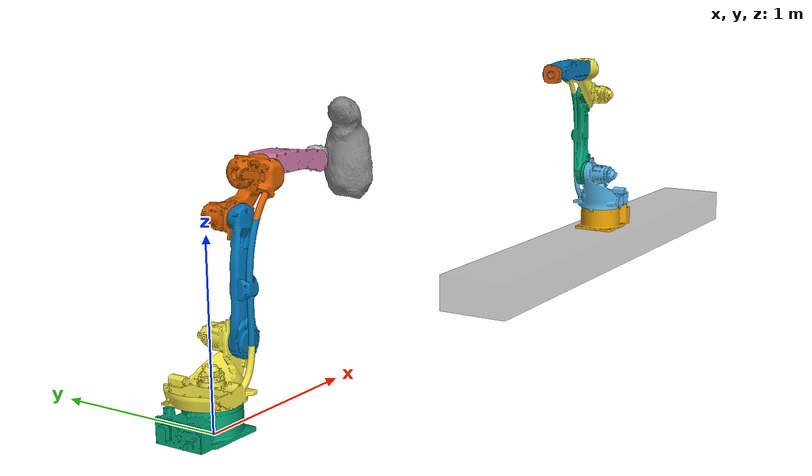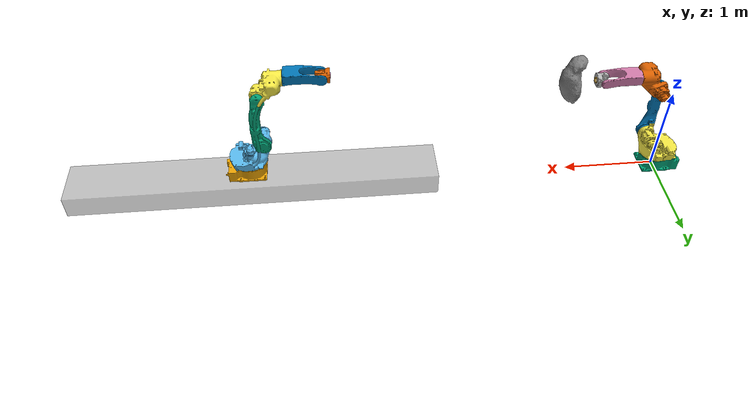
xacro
<?xml version="1.0" ?>
<robot name="dual_gp12_rail" xmlns:xacro="http://ros.org/wiki/xacro">
  <xacro:include filename="$(find motoman_gp12_support)/urdf/gp12_macro.xacro" />

  <!-- Instantiate both robots -->
  <xacro:motoman_gp12 prefix="group_1/"/>
  <xacro:motoman_gp12 prefix="group_2/"/>

  <!-- World frame -->
  <link name="world"/>

  <!-- Rail size and robot 1 position variables -->
  <xacro:property name="rail_length" value="4.0"/>
  <xacro:property name="rail_width" value="0.5"/>
  <xacro:property name="rail_height" value="0.25"/>
  <xacro:property name="world_to_rail_offset" value="${rail_length+0.5}"/>
  <xacro:property name="target_model_scale" value="1.0"/>

  <!-- Rail for Robot 1 -->
  <link name="rail">
    <visual>
      <geometry>
        <box size="${rail_length} ${rail_width} ${rail_height}"/>
      </geometry>
      <origin xyz="0.0 0.0 ${rail_height/2}" rpy="0 0 0"/>
      <material name="rail_grey">
        <color rgba="0.5 0.5 0.5 0.5"/>
      </material>
    </visual>
    <collision>
      <geometry>
        <box size="${rail_length} ${rail_width} ${rail_height}"/>
      </geometry>
      <origin xyz="0.0 0.0 ${rail_height/2}" rpy="0 0 0"/>
    </collision>
  </link>

  <joint name="world_to_rail" type="fixed">
    <parent link="world"/>
    <child link="rail"/>
    <origin xyz="${world_to_rail_offset} 0 0" rpy="0 0 3.14159"/>
  </joint>

  <joint name="rail_joint" type="prismatic">
    <parent link="rail"/>
    <child link="group_1/base_link"/>
    <origin xyz="0 0 ${rail_height}" rpy="0 0 0"/>
    <axis xyz="1 0 0"/>
    <limit lower="${-rail_length/2}" upper="${rail_length/2}" effort="1000.0" velocity="1.0"/>
  </joint>

  <!-- Robot 2 at world origin -->
  <joint name="world_to_robot2" type="fixed">
    <parent link="world"/>
    <child link="group_2/base_link"/>
    <origin xyz="0 0 0" rpy="0 0 0"/>
  </joint>

  <!-- Target mounted on Robot 2. NOTE TODO: can be moved to external reusable xacro-->
  <link name="group_2/target">
    <visual>
      <geometry>
        <mesh filename="package://cosmica_resources/meshes/Itokawa_Hayabusa_200k_poly.stl" scale="${target_model_scale} ${target_model_scale} ${target_model_scale}"/>
      </geometry>
      <material name="target_grey">
        <color rgba="0.5 0.5 0.5 1.0"/>
      </material>
      <origin xyz="0.0 0.0 0.25" rpy="0 0 0"/>
    </visual>
    <collision>
      <geometry>
        <mesh filename="package://cosmica_resources/meshes/Itokawa_Hayabusa_200k_poly.stl" scale="${target_model_scale} ${target_model_scale} ${target_model_scale}"/>
      </geometry>
      <origin xyz="0.0 0.0 0.0" rpy="0 0 0"/>
    </collision>
  </link>

<!-- Define joint from tool0 to link target-->
  <joint name="group_2/tool0_to_target" type="fixed">
    <parent link="group_2/tool0"/>
    <child link="group_2/target"/>
    <origin xyz="0.0 0.0 0.0" rpy="0 0 0"/>  <!-- offset from tool0 -->
  </joint>

</robot>

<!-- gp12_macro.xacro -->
<robot xmlns:xacro="http://ros.org/wiki/xacro">
<xacro:macro name="motoman_gp12" params="prefix">
    <xacro:include filename="$(find motoman_resources)/urdf/common_materials.xacro"/>

    <!-- link list -->
    <link name="${prefix}base_link">
        <visual>
            <geometry>
                <mesh filename="package://motoman_gp12_support/meshes/visual/gp12_base_link.stl"/>
            </geometry>
            <xacro:material_yaskawa_blue/>
        </visual>
        <collision>
            <geometry>
                <mesh filename="package://motoman_gp12_support/meshes/collision/gp12_base_link.stl"/>
            </geometry>
        </collision>
    </link>
    <link name="${prefix}link_1">
        <visual>
            <geometry>
                <mesh filename="package://motoman_gp12_support/meshes/visual/gp12_link_1_s.stl"/>
            </geometry>
            <xacro:material_yaskawa_blue/>
        </visual>
        <collision>
            <geometry>
                <mesh filename="package://motoman_gp12_support/meshes/collision/gp12_link_1_s.stl"/>
            </geometry>
        </collision>
    </link>
    <link name="${prefix}link_2">
        <visual>
            <geometry>
                <mesh filename="package://motoman_gp12_support/meshes/visual/gp12_link_2_l.stl"/>
            </geometry>
            <xacro:material_yaskawa_blue/>
        </visual>
        <collision>
            <geometry>
                <mesh filename="package://motoman_gp12_support/meshes/collision/gp12_link_2_l.stl"/>
            </geometry>
        </collision>
    </link>
    <link name="${prefix}link_3">
        <visual>
            <geometry>
                <mesh filename="package://motoman_gp12_support/meshes/visual/gp12_link_3_u.stl"/>
            </geometry>
            <xacro:material_yaskawa_blue/>
        </visual>
        <collision>
            <geometry>
                <mesh filename="package://motoman_gp12_support/meshes/collision/gp12_link_3_u.stl"/>
            </geometry>
        </collision>
    </link>
    <link name="${prefix}link_4">
        <visual>
            <geometry>
                <mesh filename="package://motoman_gp12_support/meshes/visual/gp12_link_4_r.stl"/>
            </geometry>
            <xacro:material_yaskawa_blue/>
        </visual>
        <collision>
            <geometry>
                <mesh filename="package://motoman_gp12_support/meshes/collision/gp12_link_4_r.stl"/>
            </geometry>
        </collision>
    </link>
    <link name="${prefix}link_5">
        <visual>
            <geometry>
                <mesh filename="package://motoman_gp12_support/meshes/visual/gp12_link_5_b.stl"/>
            </geometry>
            <xacro:material_yaskawa_blue/>
        </visual>
        <collision>
            <geometry>
                <mesh filename="package://motoman_gp12_support/meshes/collision/gp12_link_5_b.stl"/>
            </geometry>
        </collision>
    </link>
    <link name="${prefix}link_6">
        <visual>
            <geometry>
                <mesh filename="package://motoman_gp12_support/meshes/visual/gp12_link_6_t.stl"/>
            </geometry>
            <xacro:material_yaskawa_blue/>
        </visual>
        <collision>
            <geometry>
                <mesh filename="package://motoman_gp12_support/meshes/collision/gp12_link_6_t.stl"/>
            </geometry>
        </collision>
    </link>
    <link name="${prefix}flange"/>
    <link name="${prefix}tool0"/>
    <!-- end of link list -->

    <!-- joint list -->
    <joint name="${prefix}joint_1" type="revolute">
        <parent link="${prefix}base_link"/>
        <child link="${prefix}link_1"/>
        <origin xyz="0 0 0.450" rpy="0 0 0" />
        <axis xyz="0 0 1" />
        <limit lower="-2.9670" upper="2.9670" effort="926.10" velocity="4.5355"/>
    </joint>
    <joint name="${prefix}joint_2" type="revolute">
        <parent link="${prefix}link_1"/>
        <child link="${prefix}link_2"/>
        <origin xyz="0.155 0 0" rpy="0 0 0" />
        <axis xyz="0 1 0" />
        <limit lower="-1.5708" upper="2.7052" effort="1029.00" velocity="4.0132"/>
    </joint>
    <joint name="${prefix}joint_3" type="revolute">
        <parent link="${prefix}link_2"/>
        <child link="${prefix}link_3"/>
        <origin xyz="0 0 0.614" rpy="0 0 0" />
        <axis xyz="0 -1 0" />
        <limit lower="-1.4835" upper="2.6179" effort="551.25" velocity="4.5375"/>
    </joint>
    <joint name="${prefix}joint_4" type="revolute">
        <parent link="${prefix}link_3"/>
        <child link="${prefix}link_4"/>
        <origin xyz="0.640 0 0.200" rpy="0 0 0" />
        <axis xyz="-1 0 0" />
        <limit lower="-3.4906" upper="3.4906" effort="89.96" velocity="8.2007"/>
    </joint>
    <joint name="${prefix}joint_5" type="revolute">
        <parent link="${prefix}link_4"/>
        <child link="${prefix}link_5"/>
        <origin xyz="0 0 0" rpy="0 0 0" />
        <axis xyz="0 -1 0" />
        <limit lower="-2.6179" upper="2.6179" effort="67.03" velocity="8.1992"/>
    </joint>
    <joint name="${prefix}joint_6" type="revolute">
        <parent link="${prefix}link_5"/>
        <child link="${prefix}link_6"/>
        <origin xyz="0 0 0" rpy="0 0 0" />
        <axis xyz="-1 0 0" />
        <limit lower="-7.9412" upper="7.9412" effort="33.30" velocity="12.2143"/>
    </joint>
    <!-- ROS-Industrial 'flange' frame: attachment point for EEF models -->
    <joint name="${prefix}joint_6-flange" type="fixed">
        <origin xyz="0.100 0 0" rpy="0 0 0"/>
        <parent link="${prefix}link_6"/>
        <child link="${prefix}flange"/>
    </joint>
    <!-- ROS-Industrial 'tool0' frame: all-zeros tool frame -->
    <joint name="${prefix}flange-tool0" type="fixed">
        <origin xyz="0 0 0" rpy="3.1415926 -1.570796 0"/>
        <parent link="${prefix}flange"/>
        <child link="${prefix}tool0"/>
    </joint>
    <!-- end of joint list -->

    <!-- ROS base_link to Robot Manufacturer World Coordinates transform -->
    <link name="${prefix}base" />
    <joint name="${prefix}base_link-base" type="fixed">
        <origin xyz="0 0 0.450" rpy="0 0 0"/>
        <parent link="${prefix}base_link"/>
        <child link="${prefix}base"/>
    </joint>

    </xacro:macro>
</robot>
